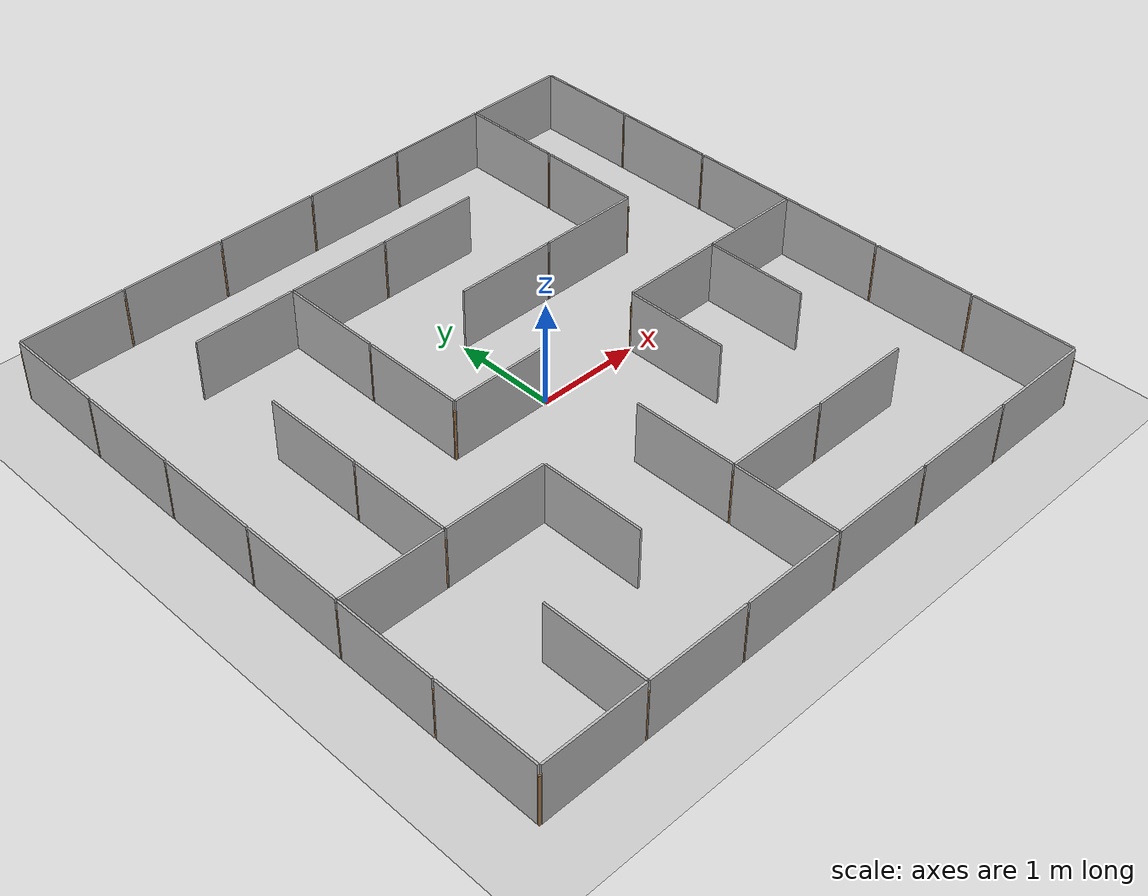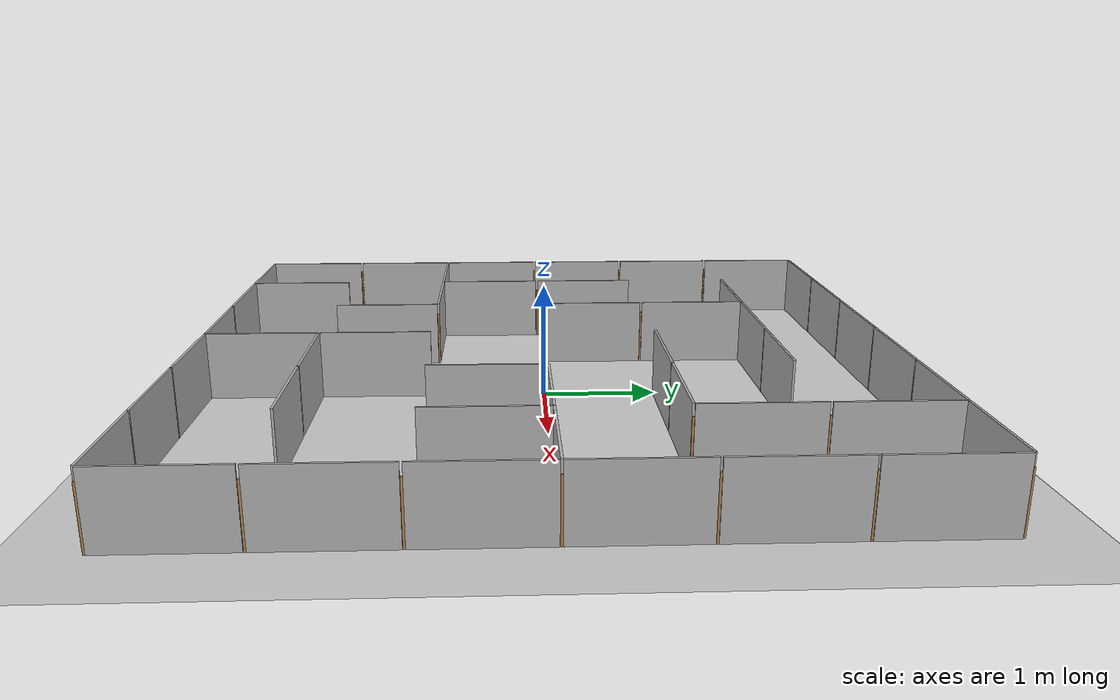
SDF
<?xml version="1.0"?>
<sdf version="1.7">
  <world name="default">

    <include>
      <uri>model://ground_plane</uri>
    </include>

    <include>
      <uri>model://sun</uri>
    </include>

    <scene>
      <shadows>false</shadows>
    </scene>

    <gui fullscreen='0'>
      <camera name='user_camera'>
        <pose frame=''>0.319654 -0.235002 9.29441 0 1.5138 0.009599</pose>
        <view_controller>orbit</view_controller>
        <projection_type>perspective</projection_type>
      </camera>
    </gui>

    <physics type="ode">
      <real_time_update_rate>5000.0</real_time_update_rate>
      <max_step_size>0.001</max_step_size>
      <real_time_factor>1</real_time_factor>
      <ode>
        <solver>
          <type>quick</type>
          <iters>150</iters>
          <precon_iters>0</precon_iters>
          <sor>1.400000</sor>
          <use_dynamic_moi_rescaling>1</use_dynamic_moi_rescaling>
        </solver>
        <constraints>
          <cfm>0.00001</cfm>
          <erp>0.2</erp>
          <contact_max_correcting_vel>2000.000000</contact_max_correcting_vel>
          <contact_surface_layer>0.01000</contact_surface_layer>
        </constraints>
      </ode>
    </physics>

    <model name="maze_3_6x6">
      <static>1</static>
      <include>
        <uri>model://maze_3_6x6</uri>
        <pose>-3.0 -3.0 0.0 0.0 0.0 0.0</pose>
      </include>
    </model>

  </world>
</sdf>

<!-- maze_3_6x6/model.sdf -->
<sdf version="1.6">
    <model name="maze_3_6x6">

<!-- outer wall along x axis (y:0) -->
        <include>
            <name>plywood_panel_0_0_b</name>
            <uri>model://plywood_panel</uri>
            <pose>0 0 0 0 0 1.571</pose>
        </include>
        <include>
            <name>wooden_joint_0_0_b</name>
            <uri>model://wooden_joint</uri>
            <pose>0 0 0 0 0 0</pose>
        </include>

        <include>
            <name>plywood_panel_1_0_b</name>
            <uri>model://plywood_panel</uri>
            <pose>1 0 0 0 0 1.571</pose>
        </include>
        <include>
            <name>wooden_joint_1_0_b</name>
            <uri>model://wooden_joint</uri>
            <pose>1 0 0 0 0 0</pose>
        </include>

        <include>
            <name>plywood_panel_2_0_b</name>
            <uri>model://plywood_panel</uri>
            <pose>2 0 0 0 0 1.571</pose>
        </include>
        <include>
            <name>wooden_joint_2_0_b</name>
            <uri>model://wooden_joint</uri>
            <pose>2 0 0 0 0 0</pose>
        </include>

        <include>
            <name>plywood_panel_3_0_b</name>
            <uri>model://plywood_panel</uri>
            <pose>3 0 0 0 0 1.571</pose>
        </include>
        <include>
            <name>wooden_joint_3_0_b</name>
            <uri>model://wooden_joint</uri>
            <pose>3 0 0 0 0 0</pose>
        </include>

        <include>
            <name>plywood_panel_4_0_b</name>
            <uri>model://plywood_panel</uri>
            <pose>4 0 0 0 0 1.571</pose>
        </include>
        <include>
            <name>wooden_joint_4_0_b</name>
            <uri>model://wooden_joint</uri>
            <pose>4 0 0 0 0 0</pose>
        </include>

        <include>
            <name>plywood_panel_5_0_b</name>
            <uri>model://plywood_panel</uri>
            <pose>5 0 0 0 0 1.571</pose>
        </include>
        <include>
            <name>wooden_joint_5_0_b</name>
            <uri>model://wooden_joint</uri>
            <pose>5 0 0 0 0 0</pose>
        </include>

<!-- outer wall along x axis (y:6) -->
        <include>
            <name>plywood_panel_0_6_b</name>
            <uri>model://plywood_panel</uri>
            <pose>0 6 0 0 0 1.571</pose>
        </include>
        <include>
            <name>wooden_joint_0_6_b</name>
            <uri>model://wooden_joint</uri>
            <pose>0 6 0 0 0 0</pose>
        </include>

        <include>
            <name>plywood_panel_1_6_b</name>
            <uri>model://plywood_panel</uri>
            <pose>1 6 0 0 0 1.571</pose>
        </include>
        <include>
            <name>wooden_joint_1_6_b</name>
            <uri>model://wooden_joint</uri>
            <pose>1 6 0 0 0 0</pose>
        </include>

        <include>
            <name>plywood_panel_2_6_b</name>
            <uri>model://plywood_panel</uri>
            <pose>2 6 0 0 0 1.571</pose>
        </include>
        <include>
            <name>wooden_joint_2_6_b</name>
            <uri>model://wooden_joint</uri>
            <pose>2 6 0 0 0 0</pose>
        </include>

        <include>
            <name>plywood_panel_3_6_b</name>
            <uri>model://plywood_panel</uri>
            <pose>3 6 0 0 0 1.571</pose>
        </include>
        <include>
            <name>wooden_joint_3_6_b</name>
            <uri>model://wooden_joint</uri>
            <pose>3 6 0 0 0 0</pose>
        </include>

        <include>
            <name>plywood_panel_4_6_b</name>
            <uri>model://plywood_panel</uri>
            <pose>4 6 0 0 0 1.571</pose>
        </include>
        <include>
            <name>wooden_joint_4_6_b</name>
            <uri>model://wooden_joint</uri>
            <pose>4 6 0 0 0 0</pose>
        </include>

        <include>
            <name>plywood_panel_5_6_b</name>
            <uri>model://plywood_panel</uri>
            <pose>5 6 0 0 0 1.571</pose>
        </include>
        <include>
            <name>wooden_joint_5_6_b</name>
            <uri>model://wooden_joint</uri>
            <pose>5 6 0 0 0 0</pose>
        </include>

<!-- outer wall along y axis -->
        <include>
            <name>plywood_panel_0_0_a</name>
            <uri>model://plywood_panel</uri>
            <pose>0 0 0 0 0 3.14159</pose>
        </include>
        <include>
            <name>wooden_joint_6_6_a</name>
            <uri>model://wooden_joint</uri>
            <pose>6 6 0 0 0 0</pose>
        </include>

        <include>
            <name>plywood_panel_0_1_a</name>
            <uri>model://plywood_panel</uri>
            <pose>0 1 0 0 0 3.14159</pose>
        </include>
        <include>
            <name>wooden_joint_0_1_a</name>
            <uri>model://wooden_joint</uri>
            <pose>0 1 0 0 0 0</pose>
        </include>

        <include>
            <name>plywood_panel_0_2_a</name>
            <uri>model://plywood_panel</uri>
            <pose>0 2 0 0 0 3.14159</pose>
        </include>
        <include>
            <name>wooden_joint_0_2_a</name>
            <uri>model://wooden_joint</uri>
            <pose>0 2 0 0 0 0</pose>
        </include>

        <include>
            <name>plywood_panel_0_3_a</name>
            <uri>model://plywood_panel</uri>
            <pose>0 3 0 0 0 3.14159</pose>
        </include>
        <include>
            <name>wooden_joint_0_3_a</name>
            <uri>model://wooden_joint</uri>
            <pose>0 3 0 0 0 0</pose>
        </include>

        <include>
            <name>plywood_panel_0_4_a</name>
            <uri>model://plywood_panel</uri>
            <pose>0 4 0 0 0 3.14159</pose>
        </include>
        <include>
            <name>wooden_joint_0_4_a</name>
            <uri>model://wooden_joint</uri>
            <pose>0 4 0 0 0 0</pose>
        </include>

        <include>
            <name>plywood_panel_0_5_a</name>
            <uri>model://plywood_panel</uri>
            <pose>0 5 0 0 0 3.14159</pose>
        </include>
        <include>
            <name>wooden_joint_0_5_a</name>
            <uri>model://wooden_joint</uri>
            <pose>0 5 0 0 0 0</pose>
        </include>

<!-- outer wall along y axis (x:6)-->
        <include>
            <name>plywood_panel_6_0_a</name>
            <uri>model://plywood_panel</uri>
            <pose>6 0 0 0 0 3.14159</pose>
        </include>
        <include>
            <name>wooden_joint_6_0_a</name>
            <uri>model://wooden_joint</uri>
            <pose>6 0 0 0 0 0</pose>
        </include>

        <include>
            <name>plywood_panel_6_1_a</name>
            <uri>model://plywood_panel</uri>
            <pose>6 1 0 0 0 3.14159</pose>
        </include>
        <include>
            <name>wooden_joint_6_1_a</name>
            <uri>model://wooden_joint</uri>
            <pose>6 1 0 0 0 0</pose>
        </include>

        <include>
            <name>plywood_panel_6_2_a</name>
            <uri>model://plywood_panel</uri>
            <pose>6 2 0 0 0 3.14159</pose>
        </include>
        <include>
            <name>wooden_joint_6_2_a</name>
            <uri>model://wooden_joint</uri>
            <pose>6 2 0 0 0 0</pose>
        </include>

        <include>
            <name>plywood_panel_6_3_a</name>
            <uri>model://plywood_panel</uri>
            <pose>6 3 0 0 0 3.14159</pose>
        </include>
        <include>
            <name>wooden_joint_6_3_a</name>
            <uri>model://wooden_joint</uri>
            <pose>6 3 0 0 0 0</pose>
        </include>

        <include>
            <name>plywood_panel_6_4_a</name>
            <uri>model://plywood_panel</uri>
            <pose>6 4 0 0 0 3.14159</pose>
        </include>
        <include>
            <name>wooden_joint_6_4_a</name>
            <uri>model://wooden_joint</uri>
            <pose>6 4 0 0 0 0</pose>
        </include>

        <include>
            <name>plywood_panel_6_5_a</name>
            <uri>model://plywood_panel</uri>
            <pose>6 5 0 0 0 3.14159</pose>
        </include>
       <include>
            <name>wooden_joint_6_5_a</name>
            <uri>model://wooden_joint</uri>
            <pose>6 5 0 0 0 0</pose>
        </include>

<!-- interior panels -->

<!-- row 1 -->
        <include>
            <name>plywood_panel_4_1_c</name>
            <uri>model://plywood_panel</uri>
            <pose>4 1 0 0 0 -1.5708</pose>
        </include>

        <include>
            <name>plywood_panel_5_1_c</name>
            <uri>model://plywood_panel</uri>
            <pose>5 1 0 0 0 -1.5708</pose>
        </include>

<!-- row 2 -->
        <include>
            <name>plywood_panel_1_2_c</name>
            <uri>model://plywood_panel</uri>
            <pose>1 2 0 0 0 -1.5708</pose>
        </include>

        <include>
            <name>plywood_panel_2_2_c</name>
            <uri>model://plywood_panel</uri>
            <pose>2 2 0 0 0 -1.5708</pose>
        </include>

<!-- row 3 -->
        <include>
            <name>plywood_panel_3_3_c</name>
            <uri>model://plywood_panel</uri>
            <pose>3 3 0 0 0 -1.5708</pose>
        </include>

        <include>
            <name>plywood_panel_5_3_c</name>
            <uri>model://plywood_panel</uri>
            <pose>5 3 0 0 0 -1.5708</pose>
        </include>

        <include>
            <name>plywood_panel_6_3_c</name>
            <uri>model://plywood_panel</uri>
            <pose>6 3 0 0 0 -1.5708</pose>
        </include>

<!-- row 4 -->
        <include>
            <name>plywood_panel_4_4_c</name>
            <uri>model://plywood_panel</uri>
            <pose>4 4 0 0 0 -1.5708</pose>
        </include>

        <include>
            <name>plywood_panel_5_4_c</name>
            <uri>model://plywood_panel</uri>
            <pose>5 4 0 0 0 -1.5708</pose>
        </include>

<!-- row 5 -->
        <include>
            <name>plywood_panel_2_5_c</name>
            <uri>model://plywood_panel</uri>
            <pose>2 5 0 0 0 -1.5708</pose>
        </include>

        <include>
            <name>plywood_panel_3_5_c</name>
            <uri>model://plywood_panel</uri>
            <pose>3 5 0 0 0 -1.5708</pose>
        </include>

        <include>
            <name>plywood_panel_4_5_c</name>
            <uri>model://plywood_panel</uri>
            <pose>4 5 0 0 0 -1.5708</pose>
        </include>

<!-- column 1 -->
        <include>
            <name>plywood_panel_1_1_a</name>
            <uri>model://plywood_panel</uri>
            <pose>1 1 0 0 0 0</pose>
        </include>

        <include>
            <name>plywood_panel_1_3_a</name>
            <uri>model://plywood_panel</uri>
            <pose>1 3 0 0 0 0</pose>
        </include>

        <include>
            <name>plywood_panel_1_4_a</name>
            <uri>model://plywood_panel</uri>
            <pose>1 4 0 0 0 0</pose>
        </include>

<!-- column 2 -->
        <include>
            <name>plywood_panel_2_2_a</name>
            <uri>model://plywood_panel</uri>
            <pose>2 2 0 0 0 0</pose>
        </include>

        <include>
            <name>plywood_panel_2_4_a</name>
            <uri>model://plywood_panel</uri>
            <pose>2 4 0 0 0 0</pose>
        </include>

        <include>
            <name>plywood_panel_2_5_a</name>
            <uri>model://plywood_panel</uri>
            <pose>2 5 0 0 0 0</pose>
        </include>

<!-- column 3 -->
        <include>
            <name>plywood_panel_3_1_a</name>
            <uri>model://plywood_panel</uri>
            <pose>3 1 0 0 0 0</pose>
        </include>

        <include>
            <name>plywood_panel_3_2_a</name>
            <uri>model://plywood_panel</uri>
            <pose>3 2 0 0 0 0</pose>
        </include>

<!-- column 4 -->
        <include>
            <name>plywood_panel_4_3_a</name>
            <uri>model://plywood_panel</uri>
            <pose>4 3 0 0 0 0</pose>
        </include>

<!-- column 5 -->
        <include>
            <name>plywood_panel_5_3_a</name>
            <uri>model://plywood_panel</uri>
            <pose>5 3 0 0 0 0</pose>
        </include>

        <include>
            <name>plywood_panel_5_5_a</name>
            <uri>model://plywood_panel</uri>
            <pose>5 5 0 0 0 0</pose>
        </include>

        <include>
            <name>plywood_panel_5_6_a</name>
            <uri>model://plywood_panel</uri>
            <pose>5 6 0 0 0 0</pose>
        </include>

<!-- interior panel joints -->

<!-- row 1 -->
        <include>
            <name>wooden_joint_3_1</name>
            <uri>model://wooden_joint</uri>
            <pose>3 1 0 0 0 0</pose>
        </include>

        <include>
            <name>wooden_joint_4_1</name>
            <uri>model://wooden_joint</uri>
            <pose>4 1 0 0 0 0</pose>
        </include>

<!-- row 2 -->
        <include>
            <name>wooden_joint_1_2</name>
            <uri>model://wooden_joint</uri>
            <pose>1 2 0 0 0 0</pose>
        </include>

        <include>
            <name>wooden_joint_2_2</name>
            <uri>model://wooden_joint</uri>
            <pose>2 2 0 0 0 0</pose>
        </include>

<!-- row 3 -->
        <include>
            <name>wooden_joint_1_3</name>
            <uri>model://wooden_joint</uri>
            <pose>1 3 0 0 0 0</pose>
        </include>

        <include>
            <name>wooden_joint_2_3</name>
            <uri>model://wooden_joint</uri>
            <pose>2 3 0 0 0 0</pose>
        </include>

        <include>
            <name>wooden_joint_4_3</name>
            <uri>model://wooden_joint</uri>
            <pose>4 3 0 0 0 0</pose>
        </include>

        <include>
            <name>wooden_joint_5_3</name>
            <uri>model://wooden_joint</uri>
            <pose>5 3 0 0 0 0</pose>
        </include>

<!-- row 4 -->
        <include>
            <name>wooden_joint_2_4</name>
            <uri>model://wooden_joint</uri>
            <pose>2 4 0 0 0 0</pose>
        </include>

        <include>
            <name>wooden_joint_4_4</name>
            <uri>model://wooden_joint</uri>
            <pose>4 4 0 0 0 0</pose>
        </include>

        <include>
            <name>wooden_joint_5_4</name>
            <uri>model://wooden_joint</uri>
            <pose>5 4 0 0 0 0</pose>
        </include>

<!-- row 5 -->
        <include>
            <name>wooden_joint_2_5</name>
            <uri>model://wooden_joint</uri>
            <pose>2 5 0 0 0 0</pose>
        </include>

        <include>
            <name>wooden_joint_3_5</name>
            <uri>model://wooden_joint</uri>
            <pose>3 5 0 0 0 0</pose>
        </include>

        <include>
            <name>wooden_joint_5_5</name>
            <uri>model://wooden_joint</uri>
            <pose>5 5 0 0 0 0</pose>
        </include>

    </model>
</sdf>

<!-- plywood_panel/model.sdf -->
<sdf version="1.4">
    <model name="plywood_panel">
        <static>true</static>

        <link name="main">
            <pose>0 0 0 0 0 0</pose>
            <collision name="collision">
                <pose>0.0 -0.5 0.3 -1.571 0 -1.571</pose>
                <geometry>
                    <box>
                        <size>0.98 0.6 0.02</size>
                    </box>
                </geometry>
            </collision>

            <visual name="visual">
                <!-- offset origin to align to the center of one grid edge and rotate to vertical position -->
                <pose>0.01 -0.01 0 0 -1.571 0</pose>
                <geometry>
                    <mesh>
                        <scale>1.0 1.0 1.0</scale>
                        <!-- measures 0.98 x 0.6 x 0.02 mt, origin is at one corner of the panel -->
                        <uri>model://plywood_panel/meshes/plywood.dae</uri>
                    </mesh>
                </geometry>
            </visual>
        </link>

    </model>
</sdf>

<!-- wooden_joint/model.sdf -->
<sdf version='1.6'>
  <model name='wooden_joint'>
    <link name='link_0'>
      <pose frame=''>0 0 0.25 0 -0 0</pose>
      <inertial>
        <mass>0.00215981</mass>
        <inertia>
          <ixx>0.00018028</ixx>
          <ixy>0</ixy>
          <ixz>0</ixz>
          <iyy>0.00018028</iyy>
          <iyz>0</iyz>
          <izz>5.8e-07</izz>
        </inertia>
        <pose frame=''>0 0 0 0 -0 0</pose>
      </inertial>
      <gravity>1</gravity>
      <self_collide>0</self_collide>
      <kinematic>0</kinematic>
      <visual name='visual'>
        <pose frame=''>0 0 0 0 -0 0</pose>
        <geometry>
          <cylinder>
            <radius>0.01</radius>
            <length>0.5</length>
          </cylinder>
        </geometry>
        <material>
          <lighting>1</lighting>
          <script>
            <uri>file://media/materials/scripts/gazebo.material</uri>
            <name>Gazebo/Wood</name>
          </script>
          <shader type='pixel'>
            <normal_map>__default__</normal_map>
          </shader>
          <ambient>0.3 0.3 0.3 1</ambient>
          <diffuse>0.7 0.7 0.7 1</diffuse>
          <specular>0.01 0.01 0.01 1</specular>
          <emissive>0 0 0 1</emissive>
        </material>
        <transparency>0</transparency>
        <cast_shadows>1</cast_shadows>
      </visual>
      <collision name='collision'>
        <laser_retro>0</laser_retro>
        <max_contacts>10</max_contacts>
        <pose frame=''>0 0 0 0 -0 0</pose>
        <geometry>
          <cylinder>
            <radius>0.01</radius>
            <length>0.5</length>
          </cylinder>
        </geometry>
        <surface>
          <friction>
            <ode>
              <mu>1</mu>
              <mu2>1</mu2>
              <fdir1>0 0 0</fdir1>
              <slip1>0</slip1>
              <slip2>0</slip2>
            </ode>
            <torsional>
              <coefficient>1</coefficient>
              <patch_radius>0</patch_radius>
              <surface_radius>0</surface_radius>
              <use_patch_radius>1</use_patch_radius>
              <ode>
                <slip>0</slip>
              </ode>
            </torsional>
          </friction>
          <bounce>
            <restitution_coefficient>0</restitution_coefficient>
            <threshold>1e+06</threshold>
          </bounce>
          <contact>
            <collide_without_contact>0</collide_without_contact>
            <collide_without_contact_bitmask>1</collide_without_contact_bitmask>
            <collide_bitmask>1</collide_bitmask>
            <ode>
              <soft_cfm>0</soft_cfm>
              <soft_erp>0.2</soft_erp>
              <kp>1e+13</kp>
              <kd>1</kd>
              <max_vel>0.01</max_vel>
              <min_depth>0</min_depth>
            </ode>
            <bullet>
              <split_impulse>1</split_impulse>
              <split_impulse_penetration_threshold>-0.01</split_impulse_penetration_threshold>
              <soft_cfm>0</soft_cfm>
              <soft_erp>0.2</soft_erp>
              <kp>1e+13</kp>
              <kd>1</kd>
            </bullet>
          </contact>
        </surface>
      </collision>
    </link>
    <static>1</static>
    <allow_auto_disable>1</allow_auto_disable>
  </model>
</sdf>
